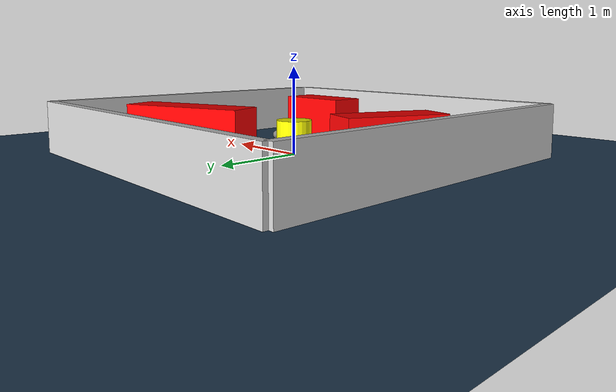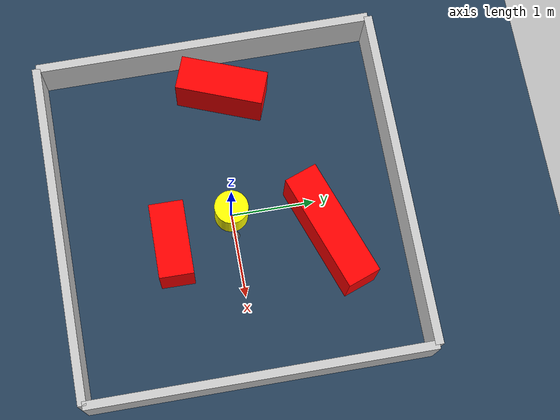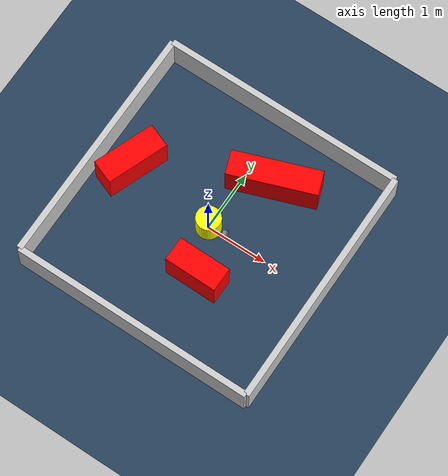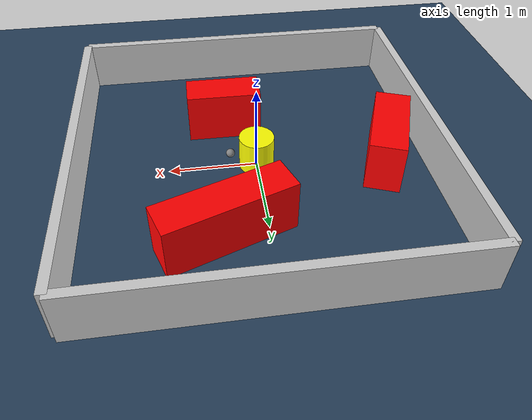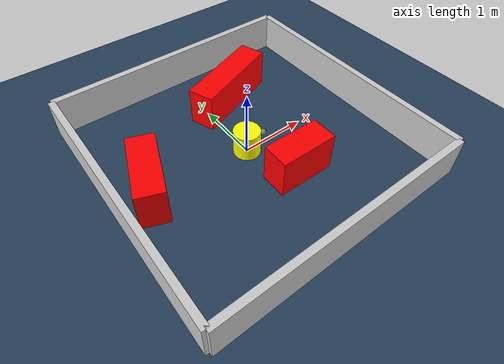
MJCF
<?xml version="1.0" ?>
<mujoco model="generated_environment">
  <option timestep="0.01" integrator="RK4" cone="elliptic"/>
  <default>
    <geom density="1"/>
  </default>
  <asset>
    <texture builtin="gradient" height="3072" rgb1="0.3 0.5 0.7" rgb2="0 0 0" type="skybox" width="512"/>
    <texture builtin="checker" height="300" mark="edge" markrgb="0.8 0.8 0.8" name="groundplane" rgb1="0.2 0.3 0.4" rgb2="0.1 0.2 0.3" type="2d" width="300"/>
    <material name="groundplane" reflectance="0.2" texrepeat="5 5" texture="groundplane" texuniform="true"/>
    <material name="robot" rgba="0.0 1.0 0.0 1"/>
  </asset>
  <worldbody>
    <light dir="0 0 -1" directional="true" pos="0 0 1.5"/>
    <geom condim="4" friction="1.0 0.005 0.001" material="groundplane" name="floor" size="0 0 0.05" type="plane"/>
    <body name="walls">
      <geom name="wall_1" condim="4" pos="-2.0 0.0 0.3" rgba="0.800000011920929 0.800000011920929 0.800000011920929 1.0" size="0.05 2.0 0.3" type="box"/>
      <geom name="wall_2" condim="4" pos="2.0 0.0 0.3" rgba="0.800000011920929 0.800000011920929 0.800000011920929 1.0" size="0.05 2.0 0.3" type="box"/>
      <geom name="wall_3" condim="4" pos="0.0 -2.0 0.3" rgba="0.800000011920929 0.800000011920929 0.800000011920929 1.0" size="2.0 0.05 0.3" type="box"/>
      <geom name="wall_4" condim="4" pos="0.0 2.0 0.3" rgba="0.800000011920929 0.800000011920929 0.800000011920929 1.0" size="2.0 0.05 0.3" type="box"/>
    </body>
    <body name="robot">
      <joint name="joint_x" type="slide" pos="0 0 0" axis="1 0 0"/>
      <joint name="joint_y" type="slide" pos="0 0 0" axis="0 1 0"/>
      <geom name="robot" type="sphere" pos="0.3 0.0 0.2" size="0.05" mass="5." friction="1.0 0.005 0.0001" condim="4" rgba="0.5 0.5 0.5 1.0"/>
      <site name="sensor_ball"/>
    </body>
    <body name="obstacle_movable_1">
      <geom name="obstacle_movable_1" condim="4" pos="0.0 0.0 0.2" euler="0 0 0.0" friction="1.0 0.005 0.001" rgba="1.0 1.0 0.0 1.0" size="0.2 0.2 0.0" type="cylinder" mass="0.1"/>
      <joint type="free"/>
    </body>
    <body name="obstacle_2_static">
      <geom name="obstacle_2_static" condim="4" pos="0.4519349706983269 1.086585818791044 0.3" euler="0 0 19.961906854191334" friction="1.0 0.005 0.001" rgba="1 0 0 1" size="0.713803239598105 0.2 0.3" type="box"/>
    </body>
    <body name="obstacle_3_static">
      <geom name="obstacle_3_static" condim="4" pos="0.30686098055132804 -0.747896103694331 0.3" euler="0 0 179.53027787537096" friction="1.0 0.005 0.001" rgba="1 0 0 1" size="0.4330279349076237 0.2 0.3" type="box"/>
    </body>
    <body name="obstacle_4_static">
      <geom name="obstacle_4_static" condim="4" pos="-1.494963278619418 0.13994048348029353 0.3" euler="0 0 68.94202716717497" friction="1.0 0.005 0.001" rgba="1 0 0 1" size="0.5179535852371087 0.2 0.3" type="box"/>
    </body>
  </worldbody>
  <actuator>
    <motor name="actuator_x" joint="joint_x" gear="1" ctrlrange="-1 1"/>
    <motor name="actuator_y" joint="joint_y" gear="1" ctrlrange="-1 1"/>
  </actuator>
</mujoco>
